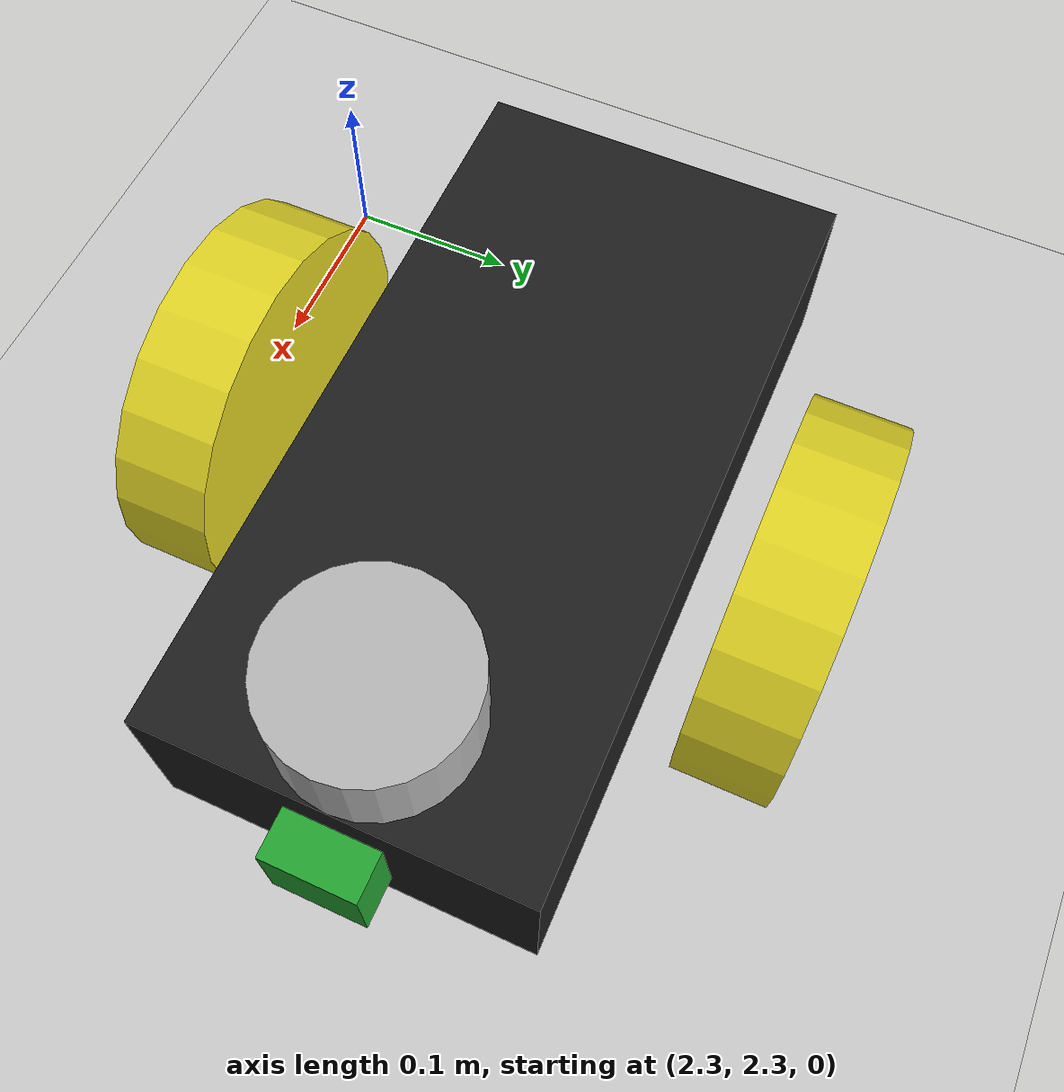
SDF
<sdf version="1.6">
 <world name="default">
  <light name="sun" type="directional">
   <pose>0 0 10 0 -0 0</pose>
   <diffuse>0.8 0.8 0.8 1</diffuse>
   <specular>0.2 0.2 0.2 1</specular>
   <attenuation>
    <range>1000</range>
    <constant>0.9</constant>
    <linear>0.01</linear>
    <quadratic>0.001</quadratic>
   </attenuation>
   <direction>-0.5 0.1 -0.9</direction>
  </light>
  <model name="ground_plane">
   <static>1</static>
   <link name="link">
    <collision name="collision">
     <geometry><plane><normal>0 0 1</normal><size>100 100</size></plane></geometry>
     <surface>
      <contact><collide_bitmask>65535</collide_bitmask></contact>
      <friction><ode><mu>100</mu><mu2>50</mu2></ode></friction>
     </surface>
    </collision>
    <visual name="visual">
     <cast_shadows>0</cast_shadows>
     <geometry><plane><normal>0 0 1</normal><size>100 100</size></plane></geometry>
     <material>
      <script><uri>file://media/materials/scripts/gazebo.material</uri><name>Gazebo/Grey</name></script>
     </material>
    </visual>
   </link>
  </model>
  <gravity>0 0 -9.8</gravity>
  <magnetic_field>6e-06 2.3e-05 -4.2e-05</magnetic_field>
  <atmosphere type="adiabatic"/>
  <physics name="default_physics" default="0" type="ode">
   <max_step_size>0.001</max_step_size>
   <real_time_factor>1</real_time_factor>
   <real_time_update_rate>1000</real_time_update_rate>
  </physics>
  <scene><ambient>0.4 0.4 0.4 1</ambient><background>0.7 0.7 0.7 1</background><shadows>1</shadows></scene>
  <audio><device>default</device></audio>
  <spherical_coordinates>
   <surface_model>EARTH_WGS84</surface_model>
   <latitude_deg>0</latitude_deg>
   <longitude_deg>0</longitude_deg>
   <elevation>0</elevation>
   <heading_deg>0</heading_deg>
  </spherical_coordinates>
  <model name="spcbot">
   <link name="chassis">
    <inertial>
     <pose>0.027869 0 0.090164 0 -0 0</pose>
     <mass>6.1</mass>
     <inertia>
      <ixx>0.102912</ixx>
      <ixy>0</ixy>
      <ixz>0.00782787</ixz>
      <iyy>0.124674</iyy>
      <iyz>0</iyz>
      <izz>0.121764</izz>
     </inertia>
    </inertial>
    <collision name="chassis_fixed_joint_lump__collision_collision">
     <geometry><box><size>0.4 0.2 0.1</size></box></geometry>
    </collision>
    <collision name="chassis_fixed_joint_lump__caster_collision_collision_1">
     <pose>-0.15 0 -0.05 0 -0 0</pose>
     <geometry><sphere><radius>0.05</radius></sphere></geometry>
    </collision>
    <collision name="chassis_fixed_joint_lump__caster_front_collision_collision_2">
     <pose>0.15 0 -0.05 0 -0 0</pose>
     <geometry><sphere><radius>0.05</radius></sphere></geometry>
    </collision>
    <collision name="chassis_fixed_joint_lump__camera_link_collision_3">
     <pose>0.2 0 0 0 -0 0</pose>
     <geometry><box><size>0.05 0.05 0.05</size></box></geometry>
    </collision>
    <collision name="chassis_fixed_joint_lump__sensor_laser_collision_4">
     <pose>0.15 0 0.05 0 -0 0</pose>
     <geometry><cylinder><length>0.1</length><radius>0.05</radius></cylinder></geometry>
    </collision>
    <visual name="chassis_visual_visual">
     <geometry><box><size>0.4 0.2 0.1</size></box></geometry>
     <material>
      <script><name>Gazebo/Black</name><uri>file://media/materials/scripts/gazebo.material</uri></script>
     </material>
    </visual>
    <visual name="chassis_fixed_joint_lump__caster_visual_visual_1">
     <pose>-0.15 0 -0.05 0 -0 0</pose>
     <geometry><sphere><radius>0.05</radius></sphere></geometry>
    </visual>
    <visual name="chassis_fixed_joint_lump__caster_front_visual_visual_2">
     <pose>0.15 0 -0.05 0 -0 0</pose>
     <geometry><sphere><radius>0.05</radius></sphere></geometry>
    </visual>
    <visual name="chassis_fixed_joint_lump__camera_link_visual_3">
     <pose>0.2 0 0 0 -0 0</pose>
     <geometry><box><size>0.05 0.05 0.05</size></box></geometry>
     <material>
      <script><name>Gazebo/Green</name><uri>file://media/materials/scripts/gazebo.material</uri></script>
     </material>
    </visual>
    <visual name="chassis_fixed_joint_lump__sensor_laser_visual_4">
     <pose>0.15 0 0.05 0 -0 0</pose>
     <geometry><cylinder><length>0.1</length><radius>0.05</radius></cylinder></geometry>
     <material><script><uri>__default__</uri><name>__default__</name></script></material>
    </visual>
    <sensor name="camera" type="camera">
     <update_rate>30</update_rate>
     <visualize>0</visualize>
     <camera name="head">
      <horizontal_fov>1.39626</horizontal_fov>
      <image><width>800</width><height>800</height><format>R8G8B8</format></image>
      <clip><near>0.02</near><far>300</far></clip>
     </camera>
     <plugin name="camera_controller" filename="libgazebo_ros_camera.so">
      <alwaysOn>1</alwaysOn>
      <updateRate>0.0</updateRate>
      <cameraName>spcbot/camera</cameraName>
      <imageTopicName>image_raw</imageTopicName>
      <cameraInfoTopicName>camera_info</cameraInfoTopicName>
      <frameName>camera</frameName>
      <hackBaseline>0.07</hackBaseline>
      <distortionK1>0.0</distortionK1>
      <distortionK2>0.0</distortionK2>
      <distortionK3>0.0</distortionK3>
      <distortionT1>0.0</distortionT1>
      <distortionT2>0.0</distortionT2>
      <robotNamespace>/</robotNamespace>
     </plugin>
     <pose>0.2 0 0 0 -0 0</pose>
    </sensor>
    <sensor name="head_hokuyo_sensor" type="ray">
     <visualize>0</visualize>
     <update_rate>10</update_rate>
     <ray>
      <scan>
       <horizontal>
        <samples>720</samples>
        <resolution>0.4</resolution>
        <min_angle>-1.5708</min_angle>
        <max_angle>1.5708</max_angle>
       </horizontal>
       <vertical><samples>1</samples><min_angle>0</min_angle><max_angle>0</max_angle></vertical>
      </scan>
      <range><min>0.5</min><max>10</max><resolution>0.1</resolution></range>
      <noise><type>gaussian</type><mean>0</mean><stddev>0</stddev></noise>
     </ray>
     <plugin name="gazebo_ros_head_hokuyo_controller" filename="libgazebo_ros_laser.so">
      <topicName>/scan</topicName>
      <frameName>sensor_laser</frameName>
      <robotNamespace>/</robotNamespace>
     </plugin>
     <pose>0.15 0 0.05 0 -0 0</pose>
    </sensor>
   </link>
   <link name="left_wheel">
    <pose>0 0.15 0 0 -0 0</pose>
    <inertial>
     <pose>0 0 0 -0 1.5707 1.5707</pose>
     <mass>5</mass>
     <inertia><ixx>0.1</ixx><ixy>0</ixy><ixz>0</ixz><iyy>0.1</iyy><iyz>0</iyz><izz>0.1</izz></inertia>
    </inertial>
    <collision name="left_wheel_fixed_joint_lump__collision_collision">
     <pose>0 0 0 3.14159 1.57079 -1.57089</pose>
     <geometry><cylinder><length>0.05</length><radius>0.1</radius></cylinder></geometry>
    </collision>
    <visual name="left_wheel_visual_visual">
     <pose>0 0 0 3.14159 1.57079 -1.57089</pose>
     <geometry><cylinder><length>0.05</length><radius>0.1</radius></cylinder></geometry>
     <material>
      <script><name>Gazebo/Yellow</name><uri>file://media/materials/scripts/gazebo.material</uri></script>
     </material>
    </visual>
   </link>
   <joint name="left_wheel_hinge" type="revolute">
    <child>left_wheel</child>
    <parent>chassis</parent>
    <axis>
     <xyz>0 1 0</xyz>
     <limit><lower>-1e+16</lower><upper>1e+16</upper></limit>
     <dynamics><spring_reference>0</spring_reference><spring_stiffness>0</spring_stiffness></dynamics>
     <use_parent_model_frame>1</use_parent_model_frame>
    </axis>
   </joint>
   <link name="right_wheel">
    <pose>0 -0.15 0 0 -0 0</pose>
    <inertial>
     <pose>0 0 0 -0 1.5707 1.5707</pose>
     <mass>5</mass>
     <inertia><ixx>0.1</ixx><ixy>0</ixy><ixz>0</ixz><iyy>0.1</iyy><iyz>0</iyz><izz>0.1</izz></inertia>
    </inertial>
    <collision name="right_wheel_fixed_joint_lump__collision_collision">
     <pose>0 0 0 3.14159 1.57079 -1.57089</pose>
     <geometry><cylinder><length>0.05</length><radius>0.1</radius></cylinder></geometry>
    </collision>
    <visual name="right_wheel_visual_visual">
     <pose>0 0 0 3.14159 1.57079 -1.57089</pose>
     <geometry><cylinder><length>0.05</length><radius>0.1</radius></cylinder></geometry>
     <material>
      <script><name>Gazebo/Yellow</name><uri>file://media/materials/scripts/gazebo.material</uri></script>
     </material>
    </visual>
   </link>
   <joint name="right_wheel_hinge" type="revolute">
    <child>right_wheel</child>
    <parent>chassis</parent>
    <axis>
     <xyz>0 1 0</xyz>
     <limit><lower>-1e+16</lower><upper>1e+16</upper></limit>
     <dynamics><spring_reference>0</spring_reference><spring_stiffness>0</spring_stiffness></dynamics>
     <use_parent_model_frame>1</use_parent_model_frame>
    </axis>
   </joint>
   <static>0</static>
   <plugin name="differential_drive_controller" filename="libgazebo_ros_diff_drive.so">
    <legacyMode>0</legacyMode>
    <alwaysOn>1</alwaysOn>
    <updateRate>10</updateRate>
    <leftJoint>left_wheel_hinge</leftJoint>
    <rightJoint>right_wheel_hinge</rightJoint>
    <wheelSeparation>0.30</wheelSeparation>
    <wheelDiameter>0.2</wheelDiameter>
    <torque>30</torque>
    <commandTopic>cmd_vel</commandTopic>
    <odometryTopic>odom</odometryTopic>
    <odometryFrame>odom</odometryFrame>
    <robotBaseFrame>chassis</robotBaseFrame>
    <robotNamespace>/</robotNamespace>
   </plugin>
   <pose>2.49993 2.49985 0.1 -1e-06 -1e-06 -1.1e-05</pose>
  </model>
 </world>
</sdf>
